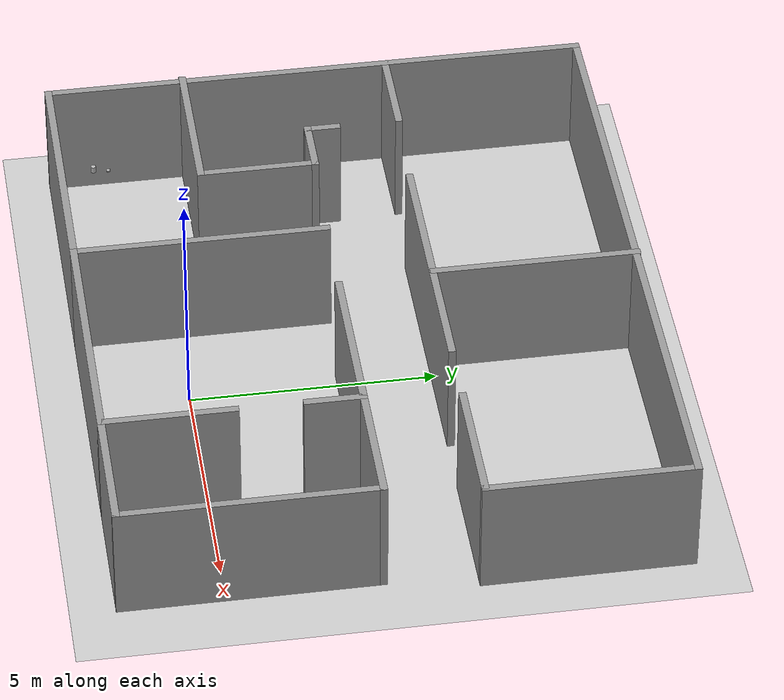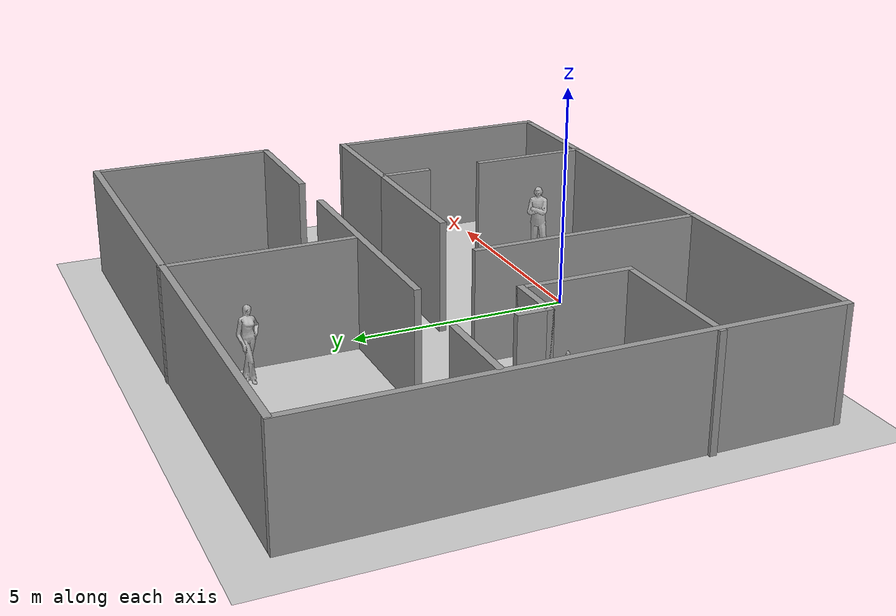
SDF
<sdf version="1.6">
 <world name="default">
  <light name="sun" type="directional">
   <pose>0 0 10 0 -0 0</pose>
   <diffuse>0.8 0.8 0.8 1</diffuse>
   <specular>0.1 0.1 0.1 1</specular>
   <attenuation>
    <range>1000</range>
    <constant>0.9</constant>
    <linear>0.01</linear>
    <quadratic>0.001</quadratic>
   </attenuation>
   <direction>-0.5 0.5 -1</direction>
  </light>
  <model name="ground_plane">
   <static>1</static>
   <link name="link">
    <collision name="collision">
     <geometry><plane><normal>0 0 1</normal><size>100 100</size></plane></geometry>
     <surface><friction><ode><mu>100</mu><mu2>50</mu2></ode></friction></surface>
    </collision>
    <visual name="visual">
     <cast_shadows>0</cast_shadows>
     <geometry><plane><normal>0 0 1</normal><size>100 100</size></plane></geometry>
     <material>
      <script><uri>file://media/materials/scripts/gazebo.material</uri><name>Gazebo/Grey</name></script>
     </material>
    </visual>
   </link>
  </model>
  <gravity>0 0 -9.8</gravity>
  <magnetic_field>6e-06 2.3e-05 -4.2e-05</magnetic_field>
  <atmosphere type="adiabatic"/>
  <physics name="default_physics" default="0" type="ode">
   <max_step_size>0.001</max_step_size>
   <real_time_factor>1</real_time_factor>
   <real_time_update_rate>1000</real_time_update_rate>
  </physics>
  <scene><ambient>0.4 0.4 0.4 1</ambient><background>0.7 0.7 0.7 1</background><shadows>1</shadows></scene>
  <spherical_coordinates>
   <surface_model>EARTH_WGS84</surface_model>
   <latitude_deg>0</latitude_deg>
   <longitude_deg>0</longitude_deg>
   <elevation>0</elevation>
   <heading_deg>0</heading_deg>
  </spherical_coordinates>
  <model name="flat_3">
   <pose>-0.575876 3.5217 0 0 -0 0</pose>
   <link name="Wall_0">
    <collision name="Wall_0_Collision">
     <geometry><box><size>5.25 0.15 2.5</size></box></geometry>
     <pose>0 0 1.25 0 -0 0</pose>
    </collision>
    <visual name="Wall_0_Visual">
     <pose>0 0 1.25 0 -0 0</pose>
     <geometry><box><size>5.25 0.15 2.5</size></box></geometry>
     <material>
      <script><uri>file://media/materials/scripts/gazebo.material</uri><name>Gazebo/Grey</name></script>
      <ambient>1 1 1 1</ambient>
     </material>
    </visual>
    <pose>-1.41412 -3.0117 0 0 -0 1.5708</pose>
   </link>
   <link name="Wall_11">
    <collision name="Wall_11_Collision">
     <geometry><box><size>2.75 0.15 2.5</size></box></geometry>
     <pose>0 0 1.25 0 -0 0</pose>
    </collision>
    <visual name="Wall_11_Visual">
     <pose>0 0 1.25 0 -0 0</pose>
     <geometry><box><size>2.75 0.15 2.5</size></box></geometry>
     <material>
      <script><uri>file://media/materials/scripts/gazebo.material</uri><name>Gazebo/Grey</name></script>
      <ambient>1 1 1 1</ambient>
     </material>
    </visual>
    <pose>4.98588 -5.5617 0 0 -0 0</pose>
   </link>
   <link name="Wall_14">
    <collision name="Wall_14_Collision">
     <geometry><box><size>5.25 0.15 2.5</size></box></geometry>
     <pose>0 0 1.25 0 -0 0</pose>
    </collision>
    <visual name="Wall_14_Visual">
     <pose>0 0 1.25 0 -0 0</pose>
     <geometry><box><size>5.25 0.15 2.5</size></box></geometry>
     <material>
      <script><uri>file://media/materials/scripts/gazebo.material</uri><name>Gazebo/Grey</name></script>
      <ambient>1 1 1 1</ambient>
     </material>
    </visual>
    <pose>6.28588 -3.0117 0 0 -0 1.5708</pose>
   </link>
   <link name="Wall_15">
    <collision name="Wall_15_Collision">
     <geometry><box><size>2.75 0.15 2.5</size></box></geometry>
     <pose>0 0 1.25 0 -0 0</pose>
    </collision>
    <visual name="Wall_15_Visual">
     <pose>0 0 1.25 0 -0 0</pose>
     <geometry><box><size>2.75 0.15 2.5</size></box></geometry>
     <material>
      <script><uri>file://media/materials/scripts/gazebo.material</uri><name>Gazebo/Grey</name></script>
      <ambient>1 1 1 1</ambient>
     </material>
    </visual>
    <pose>4.98588 -0.461699 0 0 -0 3.14159</pose>
   </link>
   <link name="Wall_17">
    <collision name="Wall_17_Collision">
     <geometry><box><size>5.25 0.15 2.5</size></box></geometry>
     <pose>0 0 1.25 0 -0 0</pose>
    </collision>
    <visual name="Wall_17_Visual">
     <pose>0 0 1.25 0 -0 0</pose>
     <geometry><box><size>5.25 0.15 2.5</size></box></geometry>
     <material>
      <script><uri>file://media/materials/scripts/gazebo.material</uri><name>Gazebo/Grey</name></script>
      <ambient>1 1 1 1</ambient>
     </material>
    </visual>
    <pose>-3.96412 -5.5617 0 0 -0 3.14159</pose>
   </link>
   <link name="Wall_18">
    <collision name="Wall_18_Collision">
     <geometry><box><size>11.25 0.15 2.5</size></box></geometry>
     <pose>0 0 1.25 0 -0 0</pose>
    </collision>
    <visual name="Wall_18_Visual">
     <pose>0 0 1.25 0 -0 0</pose>
     <geometry><box><size>11.25 0.15 2.5</size></box></geometry>
     <material>
      <script><uri>file://media/materials/scripts/gazebo.material</uri><name>Gazebo/Grey</name></script>
      <ambient>1 1 1 1</ambient>
     </material>
    </visual>
    <pose>-6.51412 -0.011699 0 0 -0 1.5708</pose>
   </link>
   <link name="Wall_19">
    <collision name="Wall_19_Collision">
     <geometry><box><size>13.25 0.15 2.5</size></box></geometry>
     <pose>0 0 1.25 0 -0 0</pose>
    </collision>
    <visual name="Wall_19_Visual">
     <pose>0 0 1.25 0 -0 0</pose>
     <geometry><box><size>13.25 0.15 2.5</size></box></geometry>
     <material>
      <script><uri>file://media/materials/scripts/gazebo.material</uri><name>Gazebo/Grey</name></script>
      <ambient>1 1 1 1</ambient>
     </material>
    </visual>
    <pose>0.035876 5.5383 0 0 -0 0</pose>
   </link>
   <link name="Wall_20">
    <collision name="Wall_20_Collision">
     <geometry><box><size>4.25 0.15 2.5</size></box></geometry>
     <pose>0 0 1.25 0 -0 0</pose>
    </collision>
    <visual name="Wall_20_Visual">
     <pose>0 0 1.25 0 -0 0</pose>
     <geometry><box><size>4.25 0.15 2.5</size></box></geometry>
     <material>
      <script><uri>file://media/materials/scripts/gazebo.material</uri><name>Gazebo/Grey</name></script>
      <ambient>1 1 1 1</ambient>
     </material>
    </visual>
    <pose>6.58588 3.4883 0 0 0 -1.5708</pose>
   </link>
   <link name="Wall_23">
    <collision name="Wall_23_Collision">
     <geometry><box><size>2 0.15 2.5</size></box></geometry>
     <pose>0 0 1.25 0 -0 0</pose>
    </collision>
    <visual name="Wall_23_Visual">
     <pose>0 0 1.25 0 -0 0</pose>
     <geometry><box><size>2 0.15 2.5</size></box></geometry>
     <material>
      <script><uri>file://media/materials/scripts/gazebo.material</uri><name>Gazebo/Grey</name></script>
      <ambient>1 1 1 1</ambient>
     </material>
    </visual>
    <pose>-5.55198 1.49212 0 0 -0 0</pose>
   </link>
   <link name="Wall_25">
    <collision name="Wall_25_Collision">
     <geometry><box><size>5.5 0.15 2.5</size></box></geometry>
     <pose>0 0 1.25 0 -0 0</pose>
    </collision>
    <visual name="Wall_25_Visual">
     <pose>0 0 1.25 0 -0 0</pose>
     <geometry><box><size>5.5 0.15 2.5</size></box></geometry>
     <material>
      <script><uri>file://media/materials/scripts/gazebo.material</uri><name>Gazebo/Grey</name></script>
      <ambient>1 1 1 1</ambient>
     </material>
    </visual>
    <pose>-0.089124 1.4383 0 0 -0 0</pose>
   </link>
   <link name="Wall_27">
    <collision name="Wall_27_Collision">
     <geometry><box><size>2.75 0.15 2.5</size></box></geometry>
     <pose>0 0 1.25 0 -0 0</pose>
    </collision>
    <visual name="Wall_27_Visual">
     <pose>0 0 1.25 0 -0 0</pose>
     <geometry><box><size>2.75 0.15 2.5</size></box></geometry>
     <material>
      <script><uri>file://media/materials/scripts/gazebo.material</uri><name>Gazebo/Grey</name></script>
      <ambient>1 1 1 1</ambient>
     </material>
    </visual>
    <pose>5.23588 1.4383 0 0 -0 0</pose>
   </link>
   <link name="Wall_29">
    <collision name="Wall_29_Collision">
     <geometry><box><size>4.25 0.15 2.5</size></box></geometry>
     <pose>0 0 1.25 0 -0 0</pose>
    </collision>
    <visual name="Wall_29_Visual">
     <pose>0 0 1.25 0 -0 0</pose>
     <geometry><box><size>4.25 0.15 2.5</size></box></geometry>
     <material>
      <script><uri>file://media/materials/scripts/gazebo.material</uri><name>Gazebo/Grey</name></script>
      <ambient>1 1 1 1</ambient>
     </material>
    </visual>
    <pose>0.214873 3.5117 0 0 -0 1.5708</pose>
   </link>
   <link name="Wall_3">
    <collision name="Wall_3_Collision">
     <geometry><box><size>5.25 0.15 2.5</size></box></geometry>
     <pose>0 0 1.25 0 -0 0</pose>
    </collision>
    <visual name="Wall_3_Visual">
     <pose>0 0 1.25 0 -0 0</pose>
     <geometry><box><size>5.25 0.15 2.5</size></box></geometry>
     <material>
      <script><uri>file://media/materials/scripts/gazebo.material</uri><name>Gazebo/Grey</name></script>
      <ambient>1 1 1 1</ambient>
     </material>
    </visual>
    <pose>1.13588 -5.5617 0 0 -0 0</pose>
   </link>
   <link name="Wall_32">
    <collision name="Wall_32_Collision">
     <geometry><box><size>3.25 0.15 2.5</size></box></geometry>
     <pose>0 0 1.25 0 -0 0</pose>
    </collision>
    <visual name="Wall_32_Visual">
     <pose>0 0 1.25 0 -0 0</pose>
     <geometry><box><size>3.25 0.15 2.5</size></box></geometry>
     <material>
      <script><uri>file://media/materials/scripts/gazebo.material</uri><name>Gazebo/Grey</name></script>
      <ambient>1 1 1 1</ambient>
     </material>
    </visual>
    <pose>-5.03588 -2.75475 0 0 -0 0</pose>
   </link>
   <link name="Wall_33">
    <collision name="Wall_33_Collision">
     <geometry><box><size>2.5 0.15 2.5</size></box></geometry>
     <pose>0 0 1.25 0 -0 0</pose>
    </collision>
    <visual name="Wall_33_Visual">
     <pose>0 0 1.25 0 -0 0</pose>
     <geometry><box><size>2.5 0.15 2.5</size></box></geometry>
     <material>
      <script><uri>file://media/materials/scripts/gazebo.material</uri><name>Gazebo/Grey</name></script>
      <ambient>1 1 1 1</ambient>
     </material>
    </visual>
    <pose>-3.48588 -1.57975 0 0 -0 1.5708</pose>
   </link>
   <link name="Wall_34">
    <collision name="Wall_34_Collision">
     <geometry><box><size>1.25 0.15 2.5</size></box></geometry>
     <pose>0 0 1.25 0 -0 0</pose>
    </collision>
    <visual name="Wall_34_Visual">
     <pose>0 0 1.25 0 -0 0</pose>
     <geometry><box><size>1.25 0.15 2.5</size></box></geometry>
     <material>
      <script><uri>file://media/materials/scripts/gazebo.material</uri><name>Gazebo/Grey</name></script>
      <ambient>1 1 1 1</ambient>
     </material>
    </visual>
    <pose>-4.03588 -0.404749 0 0 -0 3.14159</pose>
   </link>
   <link name="Wall_35">
    <collision name="Wall_35_Collision">
     <geometry><box><size>0.75 0.15 2.5</size></box></geometry>
     <pose>0 0 1.25 0 -0 0</pose>
    </collision>
    <visual name="Wall_35_Visual">
     <pose>0 0 1.25 0 -0 0</pose>
     <geometry><box><size>0.75 0.15 2.5</size></box></geometry>
     <material>
      <script><uri>file://media/materials/scripts/gazebo.material</uri><name>Gazebo/Grey</name></script>
      <ambient>1 1 1 1</ambient>
     </material>
    </visual>
    <pose>-4.58588 -0.104749 0 0 -0 1.5708</pose>
   </link>
   <link name="Wall_5">
    <collision name="Wall_5_Collision">
     <geometry><box><size>3.5 0.15 2.5</size></box></geometry>
     <pose>0 0 1.25 0 -0 0</pose>
    </collision>
    <visual name="Wall_5_Visual">
     <pose>0 0 1.25 0 -0 0</pose>
     <geometry><box><size>3.5 0.15 2.5</size></box></geometry>
     <material>
      <script><uri>file://media/materials/scripts/gazebo.material</uri><name>Gazebo/Grey</name></script>
      <ambient>1 1 1 1</ambient>
     </material>
    </visual>
    <pose>2.01088 -0.461699 0 0 -0 3.14159</pose>
   </link>
   <link name="Wall_7">
    <collision name="Wall_7_Collision">
     <geometry><box><size>1.25 0.15 2.5</size></box></geometry>
     <pose>0 0 1.25 0 -0 0</pose>
    </collision>
    <visual name="Wall_7_Visual">
     <pose>0 0 1.25 0 -0 0</pose>
     <geometry><box><size>1.25 0.15 2.5</size></box></geometry>
     <material>
      <script><uri>file://media/materials/scripts/gazebo.material</uri><name>Gazebo/Grey</name></script>
      <ambient>1 1 1 1</ambient>
     </material>
    </visual>
    <pose>3.68588 -1.0117 0 0 0 -1.5708</pose>
   </link>
   <link name="Wall_9">
    <collision name="Wall_9_Collision">
     <geometry><box><size>2.75 0.15 2.5</size></box></geometry>
     <pose>0 0 1.25 0 -0 0</pose>
    </collision>
    <visual name="Wall_9_Visual">
     <pose>0 0 1.25 0 -0 0</pose>
     <geometry><box><size>2.75 0.15 2.5</size></box></geometry>
     <material>
      <script><uri>file://media/materials/scripts/gazebo.material</uri><name>Gazebo/Grey</name></script>
      <ambient>1 1 1 1</ambient>
     </material>
    </visual>
    <pose>3.68588 -4.2617 0 0 -0 1.5708</pose>
   </link>
   <static>1</static>
  </model>
  <model name="cocacola">
   <static>1</static>
   <link name="link">
    <inertial>
     <mass>0.25</mass>
     <inertia>
      <ixx>0.000000</ixx>
      <ixy>0.000000</ixy>
      <ixz>0.000000</ixz>
      <iyy>0.000000</iyy>
      <iyz>0.000000</iyz>
      <izz>0.000000</izz>
     </inertia>
    </inertial>
    <collision name="collision">
     <pose>1.75 0 0.375 3.1415 0 0</pose>
     <geometry><cylinder><radius>0.04</radius><length>0.15</length></cylinder></geometry>
    </collision>
    <visual name="visual">
     <pose>1.75 0 0.375 3.1415 0 0</pose>
     <geometry><cylinder><radius>0.04</radius><length>0.15</length></cylinder></geometry>
     <material>
      <script>
       <uri>model://cocacola/material/scripts</uri>
       <uri>model://cocacola/material/textures</uri>
       <name>Custom/cocacola</name>
      </script>
     </material>
    </visual>
    <velocity_decay><linear>0.000000</linear><angular>0.000000</angular></velocity_decay>
   </link>
  </model>
  <model name="sprite">
   <static>1</static>
   <link name="link">
    <inertial>
     <mass>0.25</mass>
     <inertia>
      <ixx>0.000000</ixx>
      <ixy>0.000000</ixy>
      <ixz>0.000000</ixz>
      <iyy>0.000000</iyy>
      <iyz>0.000000</iyz>
      <izz>0.000000</izz>
     </inertia>
    </inertial>
    <collision name="collision">
     <pose>1.1 -0.2 0.375 3.1416 0 0</pose>
     <geometry><cylinder><radius>0.04</radius><length>0.15</length></cylinder></geometry>
    </collision>
    <visual name="visual">
     <pose>1.1 -0.2 0.375 3.1416 0 0</pose>
     <geometry><cylinder><radius>0.04</radius><length>0.15</length></cylinder></geometry>
     <material>
      <script>
       <uri>model://sprite/material/scripts</uri>
       <uri>model://sprite/material/textures</uri>
       <name>Custom/sprite</name>
      </script>
     </material>
    </visual>
    <velocity_decay><linear>0.000000</linear><angular>0.000000</angular></velocity_decay>
   </link>
  </model>
  <model name="ycb-tuna_2">
   <link name="link_3">
    <pose>-4.49 1.677 0.98 3.1416 0 0</pose>
    <inertial>
     <mass>1</mass>
     <inertia>
      <ixx>0.166667</ixx>
      <ixy>0</ixy>
      <ixz>0</ixz>
      <iyy>0.166667</iyy>
      <iyz>0</iyz>
      <izz>0.166667</izz>
     </inertia>
    </inertial>
    <visual name="visual">
     <geometry><mesh><uri>model://ycb-tuna/meshes/textured.dae</uri><scale>1 1 1</scale></mesh></geometry>
    </visual>
    <collision name="collision">
     <geometry><mesh><uri>model://ycb-tuna/meshes/textured.dae</uri></mesh></geometry>
     <surface>
      <friction>
       <ode><mu>1</mu><mu2>1</mu2><fdir1>0 0 0</fdir1><slip1>0</slip1><slip2>0</slip2></ode>
       <torsional>
        <coefficient>1</coefficient>
        <patch_radius>0</patch_radius>
        <surface_radius>0</surface_radius>
        <use_patch_radius>1</use_patch_radius>
        <ode><slip>0</slip></ode>
       </torsional>
      </friction>
      <bounce><restitution_coefficient>0</restitution_coefficient><threshold>1e+06</threshold></bounce>
      <contact>
       <collide_without_contact>0</collide_without_contact>
       <collide_without_contact_bitmask>1</collide_without_contact_bitmask>
       <collide_bitmask>1</collide_bitmask>
       <ode>
        <soft_cfm>0</soft_cfm>
        <soft_erp>0.2</soft_erp>
        <kp>1e+13</kp>
        <kd>1</kd>
        <max_vel>0.01</max_vel>
        <min_depth>0</min_depth>
       </ode>
       <bullet>
        <split_impulse>1</split_impulse>
        <split_impulse_penetration_threshold>-0.01</split_impulse_penetration_threshold>
        <soft_cfm>0</soft_cfm>
        <soft_erp>0.2</soft_erp>
        <kp>1e+13</kp>
        <kd>1</kd>
       </bullet>
      </contact>
     </surface>
    </collision>
   </link>
   <static>1</static>
  </model>
  <model name="citizen_extras_male_03">
   <static>1</static>
   <link name="link">
    <inertial>
     <mass>20</mass>
     <inertia><ixx>0.0</ixx><ixy>0.0</ixy><ixz>0.0</ixz><iyy>0.0</iyy><iyz>0.0</iyz><izz>0.0</izz></inertia>
    </inertial>
    <collision name="collision">
     <pose>2.45 -0.75 0 0 0 -2.32</pose>
     <geometry><mesh><uri>model://citizen_extras_male_03/meshes/mesh.dae</uri></mesh></geometry>
    </collision>
    <visual name="visual">
     <pose>2.45 -0.75 0 0 0 -2.32</pose>
     <geometry><mesh><uri>model://citizen_extras_male_03/meshes/mesh.dae</uri></mesh></geometry>
    </visual>
   </link>
  </model>
  <model name="citizen_extras_female_03">
   <static>1</static>
   <link name="link">
    <inertial>
     <mass>20</mass>
     <inertia><ixx>0.0</ixx><ixy>0.0</ixy><ixz>0.0</ixz><iyy>0.0</iyy><iyz>0.0</iyz><izz>0.0</izz></inertia>
    </inertial>
    <collision name="collision">
     <pose>-1 7.6 0 0 0 -1.57</pose>
     <geometry><mesh><uri>model://citizen_extras_female_03/meshes/mesh.dae</uri></mesh></geometry>
    </collision>
    <visual name="visual">
     <pose>-1 7.6 0 0 0 -1.57</pose>
     <geometry><mesh><uri>model://citizen_extras_female_03/meshes/mesh.dae</uri></mesh></geometry>
    </visual>
   </link>
  </model>
  <model name="ycb-sugar">
   <link name="link_0">
    <pose>-2.78 -0.5 0.66 0 -0 0</pose>
    <inertial>
     <mass>1</mass>
     <inertia>
      <ixx>0.166667</ixx>
      <ixy>0</ixy>
      <ixz>0</ixz>
      <iyy>0.166667</iyy>
      <iyz>0</iyz>
      <izz>0.166667</izz>
     </inertia>
    </inertial>
    <visual name="visual">
     <geometry><mesh><uri>model://ycb-sugar/meshes/textured.dae</uri><scale>1 1 1</scale></mesh></geometry>
    </visual>
    <collision name="collision">
     <geometry><mesh><uri>model://ycb-sugar/meshes/textured.dae</uri></mesh></geometry>
     <surface>
      <friction>
       <ode><mu>1</mu><mu2>1</mu2><fdir1>0 0 0</fdir1><slip1>0</slip1><slip2>0</slip2></ode>
       <torsional>
        <coefficient>1</coefficient>
        <patch_radius>0</patch_radius>
        <surface_radius>0</surface_radius>
        <use_patch_radius>1</use_patch_radius>
        <ode><slip>0</slip></ode>
       </torsional>
      </friction>
      <bounce><restitution_coefficient>0</restitution_coefficient><threshold>1e+06</threshold></bounce>
      <contact>
       <collide_without_contact>0</collide_without_contact>
       <collide_without_contact_bitmask>1</collide_without_contact_bitmask>
       <collide_bitmask>1</collide_bitmask>
       <ode>
        <soft_cfm>0</soft_cfm>
        <soft_erp>0.2</soft_erp>
        <kp>1e+13</kp>
        <kd>1</kd>
        <max_vel>0.01</max_vel>
        <min_depth>0</min_depth>
       </ode>
       <bullet>
        <split_impulse>1</split_impulse>
        <split_impulse_penetration_threshold>-0.01</split_impulse_penetration_threshold>
        <soft_cfm>0</soft_cfm>
        <soft_erp>0.2</soft_erp>
        <kp>1e+13</kp>
        <kd>1</kd>
       </bullet>
      </contact>
     </surface>
    </collision>
   </link>
   <static>1</static>
  </model>
  <model name="ycb-jello">
   <link name="link_5">
    <pose>-2.5 -1.0 0.66 0 -0 0</pose>
    <inertial>
     <mass>1</mass>
     <inertia>
      <ixx>0.166667</ixx>
      <ixy>0</ixy>
      <ixz>0</ixz>
      <iyy>0.166667</iyy>
      <iyz>0</iyz>
      <izz>0.166667</izz>
     </inertia>
    </inertial>
    <visual name="visual">
     <geometry><mesh><uri>model://ycb-jello/meshes/textured.dae</uri><scale>1 1 1</scale></mesh></geometry>
    </visual>
    <collision name="collision">
     <geometry><mesh><uri>model://ycb-jello/meshes/textured.dae</uri></mesh></geometry>
     <surface>
      <friction>
       <ode><mu>1</mu><mu2>1</mu2><fdir1>0 0 0</fdir1><slip1>0</slip1><slip2>0</slip2></ode>
       <torsional>
        <coefficient>1</coefficient>
        <patch_radius>0</patch_radius>
        <surface_radius>0</surface_radius>
        <use_patch_radius>1</use_patch_radius>
        <ode><slip>0</slip></ode>
       </torsional>
      </friction>
      <bounce><restitution_coefficient>0</restitution_coefficient><threshold>1e+06</threshold></bounce>
      <contact>
       <collide_without_contact>0</collide_without_contact>
       <collide_without_contact_bitmask>1</collide_without_contact_bitmask>
       <collide_bitmask>1</collide_bitmask>
       <ode>
        <soft_cfm>0</soft_cfm>
        <soft_erp>0.2</soft_erp>
        <kp>1e+13</kp>
        <kd>1</kd>
        <max_vel>0.01</max_vel>
        <min_depth>0</min_depth>
       </ode>
       <bullet>
        <split_impulse>1</split_impulse>
        <split_impulse_penetration_threshold>-0.01</split_impulse_penetration_threshold>
        <soft_cfm>0</soft_cfm>
        <soft_erp>0.2</soft_erp>
        <kp>1e+13</kp>
        <kd>1</kd>
       </bullet>
      </contact>
     </surface>
    </collision>
   </link>
   <static>1</static>
  </model>
  <model name="ycb-tomatosoup_2">
   <link name="link_1">
    <pose>-2.8 -1.67 0.66 0 -0 0</pose>
    <inertial>
     <mass>1</mass>
     <inertia>
      <ixx>0.166667</ixx>
      <ixy>0</ixy>
      <ixz>0</ixz>
      <iyy>0.166667</iyy>
      <iyz>0</iyz>
      <izz>0.166667</izz>
     </inertia>
    </inertial>
    <visual name="visual">
     <geometry><mesh><uri>model://ycb-tomatosoup/meshes/textured.dae</uri><scale>1 1 1</scale></mesh></geometry>
    </visual>
    <collision name="collision">
     <geometry><mesh><uri>model://ycb-tomatosoup/meshes/textured.dae</uri></mesh></geometry>
     <surface>
      <friction>
       <ode><mu>1</mu><mu2>1</mu2><fdir1>0 0 0</fdir1><slip1>0</slip1><slip2>0</slip2></ode>
       <torsional>
        <coefficient>1</coefficient>
        <patch_radius>0</patch_radius>
        <surface_radius>0</surface_radius>
        <use_patch_radius>1</use_patch_radius>
        <ode><slip>0</slip></ode>
       </torsional>
      </friction>
      <bounce><restitution_coefficient>0</restitution_coefficient><threshold>1e+06</threshold></bounce>
      <contact>
       <collide_without_contact>0</collide_without_contact>
       <collide_without_contact_bitmask>1</collide_without_contact_bitmask>
       <collide_bitmask>1</collide_bitmask>
       <ode>
        <soft_cfm>0</soft_cfm>
        <soft_erp>0.2</soft_erp>
        <kp>1e+13</kp>
        <kd>1</kd>
        <max_vel>0.01</max_vel>
        <min_depth>0</min_depth>
       </ode>
       <bullet>
        <split_impulse>1</split_impulse>
        <split_impulse_penetration_threshold>-0.01</split_impulse_penetration_threshold>
        <soft_cfm>0</soft_cfm>
        <soft_erp>0.2</soft_erp>
        <kp>1e+13</kp>
        <kd>1</kd>
       </bullet>
      </contact>
     </surface>
    </collision>
   </link>
   <static>1</static>
  </model>
  <model name="ycb-coffee">
   <link name="link_0">
    <pose>-6.63 -1.2 0.66 0 -0 0</pose>
    <inertial>
     <mass>1</mass>
     <inertia>
      <ixx>0.166667</ixx>
      <ixy>0</ixy>
      <ixz>0</ixz>
      <iyy>0.166667</iyy>
      <iyz>0</iyz>
      <izz>0.166667</izz>
     </inertia>
    </inertial>
    <visual name="visual">
     <geometry><mesh><uri>model://ycb-coffee/meshes/textured.dae</uri><scale>1 1 1</scale></mesh></geometry>
    </visual>
    <collision name="collision">
     <geometry><mesh><uri>model://ycb-coffeeeshes/textured.dae</uri></mesh></geometry>
     <surface>
      <friction>
       <ode><mu>1</mu><mu2>1</mu2><fdir1>0 0 0</fdir1><slip1>0</slip1><slip2>0</slip2></ode>
       <torsional>
        <coefficient>1</coefficient>
        <patch_radius>0</patch_radius>
        <surface_radius>0</surface_radius>
        <use_patch_radius>1</use_patch_radius>
        <ode><slip>0</slip></ode>
       </torsional>
      </friction>
      <bounce><restitution_coefficient>0</restitution_coefficient><threshold>1e+06</threshold></bounce>
      <contact>
       <collide_without_contact>0</collide_without_contact>
       <collide_without_contact_bitmask>1</collide_without_contact_bitmask>
       <collide_bitmask>1</collide_bitmask>
       <ode>
        <soft_cfm>0</soft_cfm>
        <soft_erp>0.2</soft_erp>
        <kp>1e+13</kp>
        <kd>1</kd>
        <max_vel>0.01</max_vel>
        <min_depth>0</min_depth>
       </ode>
       <bullet>
        <split_impulse>1</split_impulse>
        <split_impulse_penetration_threshold>-0.01</split_impulse_penetration_threshold>
        <soft_cfm>0</soft_cfm>
        <soft_erp>0.2</soft_erp>
        <kp>1e+13</kp>
        <kd>1</kd>
       </bullet>
      </contact>
     </surface>
    </collision>
   </link>
   <static>1</static>
  </model>
  <model name="ycb-tuna">
   <link name="link_3">
    <pose>-6.6 -0.88 0.66 0 -0 0</pose>
    <inertial>
     <mass>1</mass>
     <inertia>
      <ixx>0.166667</ixx>
      <ixy>0</ixy>
      <ixz>0</ixz>
      <iyy>0.166667</iyy>
      <iyz>0</iyz>
      <izz>0.166667</izz>
     </inertia>
    </inertial>
    <visual name="visual">
     <geometry><mesh><uri>model://ycb-tuna/meshes/textured.dae</uri><scale>1 1 1</scale></mesh></geometry>
    </visual>
    <collision name="collision">
     <geometry><mesh><uri>model://ycb-tuna/meshes/textured.dae</uri></mesh></geometry>
     <surface>
      <friction>
       <ode><mu>1</mu><mu2>1</mu2><fdir1>0 0 0</fdir1><slip1>0</slip1><slip2>0</slip2></ode>
       <torsional>
        <coefficient>1</coefficient>
        <patch_radius>0</patch_radius>
        <surface_radius>0</surface_radius>
        <use_patch_radius>1</use_patch_radius>
        <ode><slip>0</slip></ode>
       </torsional>
      </friction>
      <bounce><restitution_coefficient>0</restitution_coefficient><threshold>1e+06</threshold></bounce>
      <contact>
       <collide_without_contact>0</collide_without_contact>
       <collide_without_contact_bitmask>1</collide_without_contact_bitmask>
       <collide_bitmask>1</collide_bitmask>
       <ode>
        <soft_cfm>0</soft_cfm>
        <soft_erp>0.2</soft_erp>
        <kp>1e+13</kp>
        <kd>1</kd>
        <max_vel>0.01</max_vel>
        <min_depth>0</min_depth>
       </ode>
       <bullet>
        <split_impulse>1</split_impulse>
        <split_impulse_penetration_threshold>-0.01</split_impulse_penetration_threshold>
        <soft_cfm>0</soft_cfm>
        <soft_erp>0.2</soft_erp>
        <kp>1e+13</kp>
        <kd>1</kd>
       </bullet>
      </contact>
     </surface>
    </collision>
   </link>
   <static>1</static>
  </model>
  <model name="ycb-bleach">
   <link name="link_8">
    <pose>-4.46 2.73 0.952 0 -0 -0.73</pose>
    <inertial>
     <mass>1</mass>
     <inertia>
      <ixx>0.166667</ixx>
      <ixy>0</ixy>
      <ixz>0</ixz>
      <iyy>0.166667</iyy>
      <iyz>0</iyz>
      <izz>0.166667</izz>
     </inertia>
    </inertial>
    <visual name="visual">
     <geometry><mesh><uri>model://ycb-bleach/meshes/textured.dae</uri><scale>1 1 1</scale></mesh></geometry>
    </visual>
    <collision name="collision">
     <geometry><mesh><uri>/model://ycb-bleach/meshes/textured.dae</uri></mesh></geometry>
     <surface>
      <friction>
       <ode><mu>1</mu><mu2>1</mu2><fdir1>0 0 0</fdir1><slip1>0</slip1><slip2>0</slip2></ode>
       <torsional>
        <coefficient>1</coefficient>
        <patch_radius>0</patch_radius>
        <surface_radius>0</surface_radius>
        <use_patch_radius>1</use_patch_radius>
        <ode><slip>0</slip></ode>
       </torsional>
      </friction>
      <bounce><restitution_coefficient>0</restitution_coefficient><threshold>1e+06</threshold></bounce>
      <contact>
       <collide_without_contact>0</collide_without_contact>
       <collide_without_contact_bitmask>1</collide_without_contact_bitmask>
       <collide_bitmask>1</collide_bitmask>
       <ode>
        <soft_cfm>0</soft_cfm>
        <soft_erp>0.2</soft_erp>
        <kp>1e+13</kp>
        <kd>1</kd>
        <max_vel>0.01</max_vel>
        <min_depth>0</min_depth>
       </ode>
       <bullet>
        <split_impulse>1</split_impulse>
        <split_impulse_penetration_threshold>-0.01</split_impulse_penetration_threshold>
        <soft_cfm>0</soft_cfm>
        <soft_erp>0.2</soft_erp>
        <kp>1e+13</kp>
        <kd>1</kd>
       </bullet>
      </contact>
     </surface>
    </collision>
   </link>
   <static>1</static>
  </model>
  <model name="ycb-bleach-2">
   <link name="link_8">
    <pose>-4.49 2.29 0.952 0 -0 -1.8</pose>
    <inertial>
     <mass>1</mass>
     <inertia>
      <ixx>0.166667</ixx>
      <ixy>0</ixy>
      <ixz>0</ixz>
      <iyy>0.166667</iyy>
      <iyz>0</iyz>
      <izz>0.166667</izz>
     </inertia>
    </inertial>
    <visual name="visual">
     <geometry><mesh><uri>model://ycb-bleach/meshes/textured.dae</uri><scale>1 1 1</scale></mesh></geometry>
    </visual>
    <collision name="collision">
     <geometry><mesh><uri>/model://ycb-bleach/meshes/textured.dae</uri></mesh></geometry>
     <surface>
      <friction>
       <ode><mu>1</mu><mu2>1</mu2><fdir1>0 0 0</fdir1><slip1>0</slip1><slip2>0</slip2></ode>
       <torsional>
        <coefficient>1</coefficient>
        <patch_radius>0</patch_radius>
        <surface_radius>0</surface_radius>
        <use_patch_radius>1</use_patch_radius>
        <ode><slip>0</slip></ode>
       </torsional>
      </friction>
      <bounce><restitution_coefficient>0</restitution_coefficient><threshold>1e+06</threshold></bounce>
      <contact>
       <collide_without_contact>0</collide_without_contact>
       <collide_without_contact_bitmask>1</collide_without_contact_bitmask>
       <collide_bitmask>1</collide_bitmask>
       <ode>
        <soft_cfm>0</soft_cfm>
        <soft_erp>0.2</soft_erp>
        <kp>1e+13</kp>
        <kd>1</kd>
        <max_vel>0.01</max_vel>
        <min_depth>0</min_depth>
       </ode>
       <bullet>
        <split_impulse>1</split_impulse>
        <split_impulse_penetration_threshold>-0.01</split_impulse_penetration_threshold>
        <soft_cfm>0</soft_cfm>
        <soft_erp>0.2</soft_erp>
        <kp>1e+13</kp>
        <kd>1</kd>
       </bullet>
      </contact>
     </surface>
    </collision>
   </link>
   <static>1</static>
  </model>
  <model name="ycb-sugar-2">
   <link name="link_0">
    <pose>-4.48 2.67 0.5 0 -0 -2.8</pose>
    <inertial>
     <mass>1</mass>
     <inertia>
      <ixx>0.166667</ixx>
      <ixy>0</ixy>
      <ixz>0</ixz>
      <iyy>0.166667</iyy>
      <iyz>0</iyz>
      <izz>0.166667</izz>
     </inertia>
    </inertial>
    <visual name="visual">
     <geometry><mesh><uri>model://ycb-sugar/meshes/textured.dae</uri><scale>1 1 1</scale></mesh></geometry>
    </visual>
    <collision name="collision">
     <geometry><mesh><uri>model://ycb-sugar/meshes/textured.dae</uri></mesh></geometry>
     <surface>
      <friction>
       <ode><mu>1</mu><mu2>1</mu2><fdir1>0 0 0</fdir1><slip1>0</slip1><slip2>0</slip2></ode>
       <torsional>
        <coefficient>1</coefficient>
        <patch_radius>0</patch_radius>
        <surface_radius>0</surface_radius>
        <use_patch_radius>1</use_patch_radius>
        <ode><slip>0</slip></ode>
       </torsional>
      </friction>
      <bounce><restitution_coefficient>0</restitution_coefficient><threshold>1e+06</threshold></bounce>
      <contact>
       <collide_without_contact>0</collide_without_contact>
       <collide_without_contact_bitmask>1</collide_without_contact_bitmask>
       <collide_bitmask>1</collide_bitmask>
       <ode>
        <soft_cfm>0</soft_cfm>
        <soft_erp>0.2</soft_erp>
        <kp>1e+13</kp>
        <kd>1</kd>
        <max_vel>0.01</max_vel>
        <min_depth>0</min_depth>
       </ode>
       <bullet>
        <split_impulse>1</split_impulse>
        <split_impulse_penetration_threshold>-0.01</split_impulse_penetration_threshold>
        <soft_cfm>0</soft_cfm>
        <soft_erp>0.2</soft_erp>
        <kp>1e+13</kp>
        <kd>1</kd>
       </bullet>
      </contact>
     </surface>
    </collision>
   </link>
   <static>1</static>
  </model>
  <model name="ycb-sugar-2">
   <link name="link_0">
    <pose>-4.48 2.34 0.5 0 -0 2.89</pose>
    <inertial>
     <mass>1</mass>
     <inertia>
      <ixx>0.166667</ixx>
      <ixy>0</ixy>
      <ixz>0</ixz>
      <iyy>0.166667</iyy>
      <iyz>0</iyz>
      <izz>0.166667</izz>
     </inertia>
    </inertial>
    <visual name="visual">
     <geometry><mesh><uri>model://ycb-sugar/meshes/textured.dae</uri><scale>1 1 1</scale></mesh></geometry>
    </visual>
    <collision name="collision">
     <geometry><mesh><uri>model://ycb-sugar/meshes/textured.dae</uri></mesh></geometry>
     <surface>
      <friction>
       <ode><mu>1</mu><mu2>1</mu2><fdir1>0 0 0</fdir1><slip1>0</slip1><slip2>0</slip2></ode>
       <torsional>
        <coefficient>1</coefficient>
        <patch_radius>0</patch_radius>
        <surface_radius>0</surface_radius>
        <use_patch_radius>1</use_patch_radius>
        <ode><slip>0</slip></ode>
       </torsional>
      </friction>
      <bounce><restitution_coefficient>0</restitution_coefficient><threshold>1e+06</threshold></bounce>
      <contact>
       <collide_without_contact>0</collide_without_contact>
       <collide_without_contact_bitmask>1</collide_without_contact_bitmask>
       <collide_bitmask>1</collide_bitmask>
       <ode>
        <soft_cfm>0</soft_cfm>
        <soft_erp>0.2</soft_erp>
        <kp>1e+13</kp>
        <kd>1</kd>
        <max_vel>0.01</max_vel>
        <min_depth>0</min_depth>
       </ode>
       <bullet>
        <split_impulse>1</split_impulse>
        <split_impulse_penetration_threshold>-0.01</split_impulse_penetration_threshold>
        <soft_cfm>0</soft_cfm>
        <soft_erp>0.2</soft_erp>
        <kp>1e+13</kp>
        <kd>1</kd>
       </bullet>
      </contact>
     </surface>
    </collision>
   </link>
   <static>1</static>
  </model>
 </world>
</sdf>
